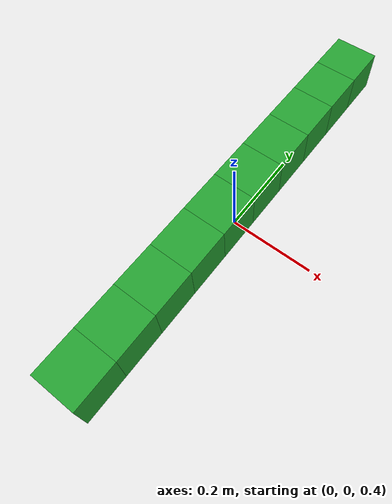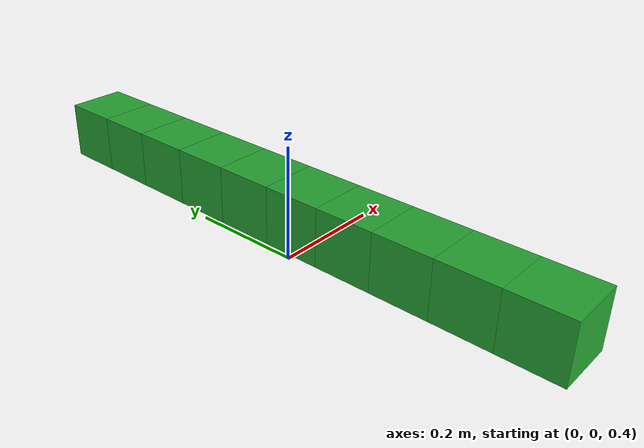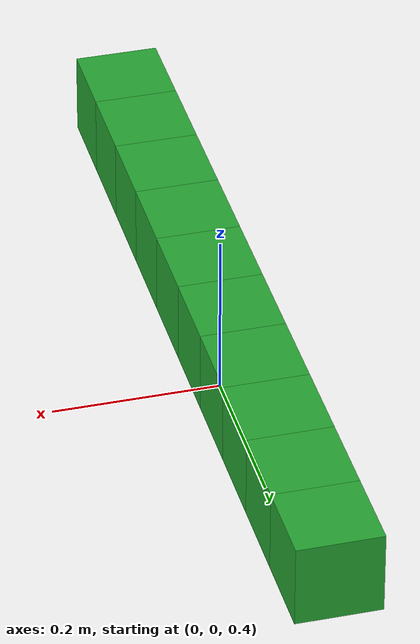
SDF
<sdf version="1.5">
 <world name="veryhighfriction-10-block">
  <physics type="ode">
   <max_step_size>0.001</max_step_size>
   <real_time_factor>1</real_time_factor>
   <real_time_update_rate>1000</real_time_update_rate>
   <max_contacts>20</max_contacts>
   <simbody>
    <min_step_size>0.0001</min_step_size>
    <accuracy>0.001</accuracy>
    <max_transient_velocity>0.01</max_transient_velocity>
    <contact>
     <stiffness>1e8</stiffness>
     <dissipation>100</dissipation>
     <plastic_coef_restitution>0.5</plastic_coef_restitution>
     <plastic_impact_velocity>0.5</plastic_impact_velocity>
     <static_friction>1e8</static_friction>
     <dynamic_friction>1e8</dynamic_friction>
     <viscous_friction>0</viscous_friction>
     <override_impact_capture_velocity>0.001</override_impact_capture_velocity>
     <override_stiction_transition_velocity>0.001</override_stiction_transition_velocity>
    </contact>
   </simbody>
   <bullet>
    <solver>
     <type>sequential_impulse</type>
     <min_step_size>0.0001</min_step_size>
     <iters>50</iters>
     <sor>1.3</sor>
    </solver>
    <constraints>
     <cfm>0.0</cfm>
     <erp>0.2</erp>
     <contact_surface_layer>0.001</contact_surface_layer>
     <split_impulse>1</split_impulse>
     <split_impulse_penetration_threshold>-0.01</split_impulse_penetration_threshold>
    </constraints>
   </bullet>
   <ode>
    <solver><type>quick</type><min_step_size>0.0001</min_step_size><iters>500</iters><sor>1.0</sor></solver>
    <constraints>
     <cfm>0.0</cfm>
     <erp>0.2</erp>
     <contact_max_correcting_vel>100</contact_max_correcting_vel>
     <contact_surface_layer>0.001</contact_surface_layer>
    </constraints>
   </ode>
  </physics>
  <include><uri>model://sun</uri></include>
  <include><uri>file://models/block-veryhighfriction</uri><pose>0 0.45 0.5 0 0 0</pose></include>
  <include><uri>file://models/block-veryhighfriction</uri><pose>0 0.35 0.5 0 0 0</pose></include>
  <include><uri>file://models/block-veryhighfriction</uri><pose>0 0.25 0.5 0 0 0</pose></include>
  <include><uri>file://models/block-veryhighfriction</uri><pose>0 0.15 0.5 0 0 0</pose></include>
  <include><uri>file://models/block-veryhighfriction</uri><pose>0 0.05 0.5 0 0 0</pose></include>
  <include><uri>file://models/block-veryhighfriction</uri><pose>0 -0.05 0.5 0 0 0</pose></include>
  <include><uri>file://models/block-veryhighfriction</uri><pose>0 -0.15 0.5 0 0 0</pose></include>
  <include><uri>file://models/block-veryhighfriction</uri><pose>0 -0.25 0.5 0 0 0</pose></include>
  <include><uri>file://models/block-veryhighfriction</uri><pose>0 -0.35 0.5 0 0 0</pose></include>
  <include><uri>file://models/block-veryhighfriction</uri><pose>0 -0.45 0.5 0 0 0</pose></include>
 </world>
</sdf>

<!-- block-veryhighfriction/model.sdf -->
<sdf version="1.5">
  <model name="block">
    <link name="body">
      <self_collide>true</self_collide>
      <pose>0 0 0 0 0 0</pose>
      <inertial>
        <pose>0 0 0 0 0 0</pose>
        <inertia>
          <ixx>0.0016667</ixx>
          <ixy>0</ixy>
          <ixz>0</ixz>
          <iyy>0.0016667</iyy>
          <iyz>0</iyz>
          <izz>0.0016667</izz>
        </inertia>
        <mass>1.0</mass>
      </inertial>
      <collision name="body_col">
        <pose>0 0 0 0 0 0</pose>
        <geometry>
          <box>
            <size>0.1 0.1 0.1</size>
          </box>
        </geometry>
        <surface>
          <friction>
            <ode>
              <mu>1e8</mu>          <!-- DO NOT MODIFY -->
              <mu2>1e8</mu2>        <!-- DO NOT MODIFY -->
              <fdir1>0 0 0</fdir1>
              <slip1>0.0</slip1>
              <slip2>0.0</slip2>
            </ode>
            <bullet>
              <friction>1e8</friction>                  <!-- DO NOT MODIFY -->
              <friction2>1e8</friction2>                <!-- DO NOT MODIFY -->
              <fdir1>0 0 0</fdir1>
              <rolling_friction>1e8</rolling_friction>  <!-- DO NOT MODIFY -->
            </bullet>
          </friction>
          <contact>
            <ode>
              <soft_cfm>0</soft_cfm>
              <soft_erp>0.2</soft_erp>
              <kp>1e12</kp>
              <kd>1e8</kd>
              <max_vel>0.01</max_vel>
              <min_depth>0.002</min_depth>
            </ode>
            <bullet>
              <soft_cfm>0</soft_cfm>
              <soft_erp>0.2</soft_erp>
              <kp>1e12</kp>
              <kd>1.0</kd>
              <split_impulse>1</split_impulse>
              <split_impulse_penetration_threshold>-0.01</split_impulse_penetration_threshold>
            </bullet>
          </contact>
        </surface>
      </collision>
      <visual name="body_vis">
        <pose>0 0 0 0 0 0</pose>
        <geometry>
          <box>
            <size>0.1 0.1 0.1</size>
          </box>
        </geometry>
        <material>
          <script>
            <uri>file://media/materials/scripts/gazebo.material</uri>
            <name>Gazebo/Green</name>
          </script>
        </material>
      </visual>
    </link>
  </model>
</sdf>
